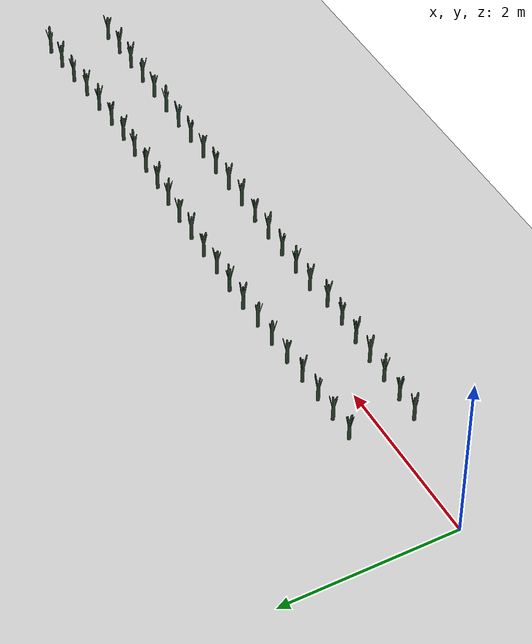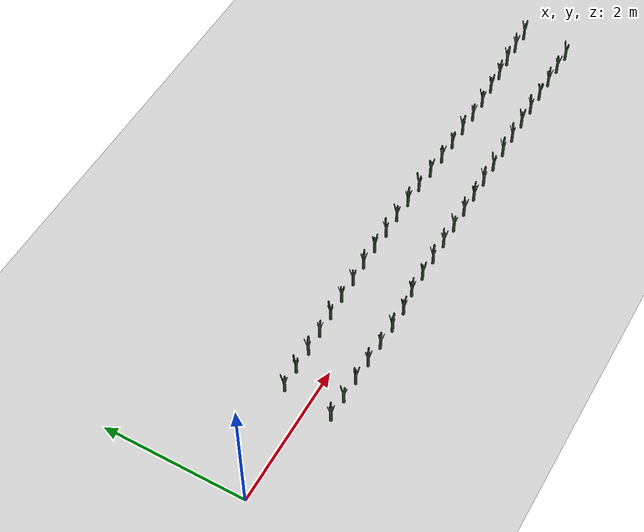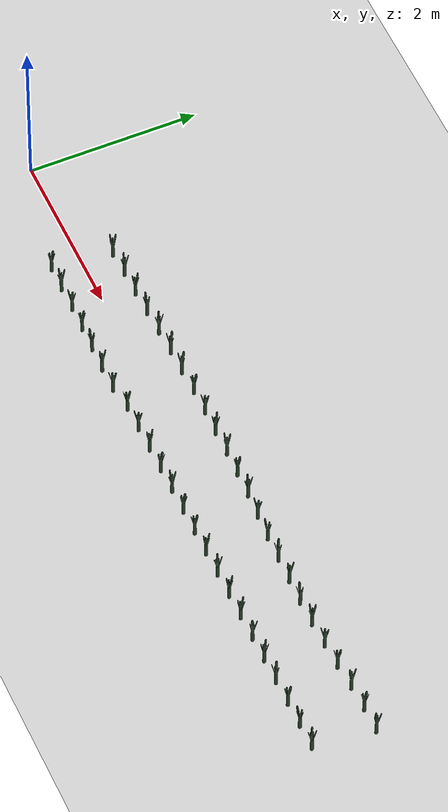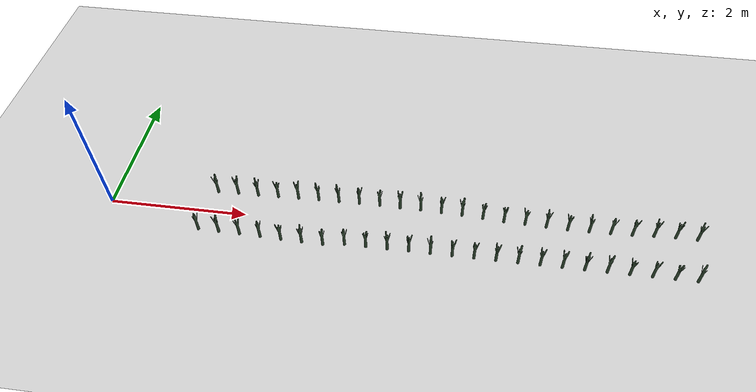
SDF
<sdf version="1.6">
 <world name="default">
  <light name="sun" type="directional">
   <pose>0 0 10 0 -0 0</pose>
   <diffuse>0.5 0.5 0.5 1</diffuse>
   <specular>0.1 0.1 0.1 1</specular>
   <attenuation>
    <range>1000</range>
    <constant>0.9</constant>
    <linear>0.01</linear>
    <quadratic>0.001</quadratic>
   </attenuation>
   <direction>0.9 0.5 -1</direction>
  </light>
  <scene><background>130 200 255 1</background><ambient>130 140 140 1</ambient></scene>
  <include><uri>model://dirt_plane</uri></include>
  <include><uri>model://Leek</uri><pose>1.500000 0.350000 0.15 0 0 83.530760</pose><static>0</static></include>
  <include><uri>model://Leek</uri><pose>1.800000 0.360000 0.15 0 0 -42.679906</pose><static>0</static></include>
  <include>
   <uri>model://Leek</uri>
   <pose>2.100000 0.360000 0.15 0 0 -112.647263</pose>
   <static>0</static>
  </include>
  <include><uri>model://Leek</uri><pose>2.400000 0.370000 0.15 0 0 22.061203</pose><static>0</static></include>
  <include><uri>model://Leek</uri><pose>2.700000 0.380000 0.15 0 0 120.552564</pose><static>0</static></include>
  <include>
   <uri>model://Leek</uri>
   <pose>3.000000 0.390000 0.15 0 0 -160.909843</pose>
   <static>0</static>
  </include>
  <include><uri>model://Leek</uri><pose>3.300000 0.390000 0.15 0 0 115.354255</pose><static>0</static></include>
  <include>
   <uri>model://Leek</uri>
   <pose>3.600000 0.400000 0.15 0 0 -152.092530</pose>
   <static>0</static>
  </include>
  <include><uri>model://Leek</uri><pose>3.900000 0.400000 0.15 0 0 48.374779</pose><static>0</static></include>
  <include><uri>model://Leek</uri><pose>4.200000 0.390000 0.15 0 0 -36.921878</pose><static>0</static></include>
  <include><uri>model://Leek</uri><pose>4.500000 0.390000 0.15 0 0 -79.912098</pose><static>0</static></include>
  <include>
   <uri>model://Leek</uri>
   <pose>4.800000 0.380000 0.15 0 0 -170.996642</pose>
   <static>0</static>
  </include>
  <include><uri>model://Leek</uri><pose>5.100000 0.370000 0.15 0 0 -42.717907</pose><static>0</static></include>
  <include>
   <uri>model://Leek</uri>
   <pose>5.400000 0.350000 0.15 0 0 -115.399049</pose>
   <static>0</static>
  </include>
  <include>
   <uri>model://Leek</uri>
   <pose>5.700000 0.330000 0.15 0 0 -153.473679</pose>
   <static>0</static>
  </include>
  <include><uri>model://Leek</uri><pose>6.000000 0.320000 0.15 0 0 53.032318</pose><static>0</static></include>
  <include>
   <uri>model://Leek</uri>
   <pose>6.300000 0.310000 0.15 0 0 -157.127290</pose>
   <static>0</static>
  </include>
  <include>
   <uri>model://Leek</uri>
   <pose>6.600000 0.300000 0.15 0 0 -166.635266</pose>
   <static>0</static>
  </include>
  <include>
   <uri>model://Leek</uri>
   <pose>6.900000 0.300000 0.15 0 0 -149.031655</pose>
   <static>0</static>
  </include>
  <include><uri>model://Leek</uri><pose>7.200000 0.310000 0.15 0 0 4.301634</pose><static>0</static></include>
  <include><uri>model://Leek</uri><pose>7.500000 0.320000 0.15 0 0 -51.845319</pose><static>0</static></include>
  <include><uri>model://Leek</uri><pose>7.800000 0.340000 0.15 0 0 150.802849</pose><static>0</static></include>
  <include><uri>model://Leek</uri><pose>8.100000 0.350000 0.15 0 0 -82.827101</pose><static>0</static></include>
  <include><uri>model://Leek</uri><pose>8.400000 0.350000 0.15 0 0 -63.120062</pose><static>0</static></include>
  <include>
   <uri>model://Leek</uri>
   <pose>1.414016 -0.350000 0.15 0 0 130.833984</pose>
   <static>0</static>
  </include>
  <include>
   <uri>model://Leek</uri>
   <pose>1.714016 -0.360000 0.15 0 0 -155.405604</pose>
   <static>0</static>
  </include>
  <include>
   <uri>model://Leek</uri>
   <pose>2.014016 -0.360000 0.15 0 0 -127.967385</pose>
   <static>0</static>
  </include>
  <include>
   <uri>model://Leek</uri>
   <pose>2.314016 -0.370000 0.15 0 0 -82.888001</pose>
   <static>0</static>
  </include>
  <include>
   <uri>model://Leek</uri>
   <pose>2.614016 -0.380000 0.15 0 0 116.438065</pose>
   <static>0</static>
  </include>
  <include><uri>model://Leek</uri><pose>2.914016 -0.390000 0.15 0 0 81.802038</pose><static>0</static></include>
  <include>
   <uri>model://Leek</uri>
   <pose>3.214016 -0.390000 0.15 0 0 -114.854261</pose>
   <static>0</static>
  </include>
  <include>
   <uri>model://Leek</uri>
   <pose>3.514016 -0.350000 0.15 0 0 -32.908311</pose>
   <static>0</static>
  </include>
  <include>
   <uri>model://Leek</uri>
   <pose>3.814016 -0.350000 0.15 0 0 -77.487732</pose>
   <static>0</static>
  </include>
  <include>
   <uri>model://Leek</uri>
   <pose>4.114016 -0.350000 0.15 0 0 100.865554</pose>
   <static>0</static>
  </include>
  <include>
   <uri>model://Leek</uri>
   <pose>4.414016 -0.350000 0.15 0 0 -89.004162</pose>
   <static>0</static>
  </include>
  <include>
   <uri>model://Leek</uri>
   <pose>4.714016 -0.350000 0.15 0 0 -105.199739</pose>
   <static>0</static>
  </include>
  <include>
   <uri>model://Leek</uri>
   <pose>5.014016 -0.350000 0.15 0 0 137.134652</pose>
   <static>0</static>
  </include>
  <include>
   <uri>model://Leek</uri>
   <pose>5.314016 -0.350000 0.15 0 0 124.267895</pose>
   <static>0</static>
  </include>
  <include>
   <uri>model://Leek</uri>
   <pose>5.614016 -0.350000 0.15 0 0 -144.224266</pose>
   <static>0</static>
  </include>
  <include>
   <uri>model://Leek</uri>
   <pose>5.914016 -0.350000 0.15 0 0 133.134095</pose>
   <static>0</static>
  </include>
  <include>
   <uri>model://Leek</uri>
   <pose>6.214016 -0.350000 0.15 0 0 -150.462763</pose>
   <static>0</static>
  </include>
  <include>
   <uri>model://Leek</uri>
   <pose>6.514016 -0.350000 0.15 0 0 157.630559</pose>
   <static>0</static>
  </include>
  <include>
   <uri>model://Leek</uri>
   <pose>6.814016 -0.350000 0.15 0 0 -107.243070</pose>
   <static>0</static>
  </include>
  <include>
   <uri>model://Leek</uri>
   <pose>7.114016 -0.350000 0.15 0 0 -11.783835</pose>
   <static>0</static>
  </include>
  <include>
   <uri>model://Leek</uri>
   <pose>7.414016 -0.350000 0.15 0 0 -22.474346</pose>
   <static>0</static>
  </include>
  <include>
   <uri>model://Leek</uri>
   <pose>7.714016 -0.350000 0.15 0 0 -70.535708</pose>
   <static>0</static>
  </include>
  <include>
   <uri>model://Leek</uri>
   <pose>8.014016 -0.350000 0.15 0 0 -78.168944</pose>
   <static>0</static>
  </include>
  <include>
   <uri>model://Leek</uri>
   <pose>8.314016 -0.350000 0.15 0 0 -93.157600</pose>
   <static>0</static>
  </include>
 </world>
</sdf>

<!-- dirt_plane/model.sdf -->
<sdf version="1.4">
<model name="dirt_plane">
  <static>true</static>
    <link name="link">
      <collision name="collision">
        <geometry>
          <plane>
            <normal>0 0 1</normal>
            <size>100 100</size>
          </plane>
        </geometry>
        <surface>
          <friction>
            <ode>
              <mu>100</mu>
              <mu2>50</mu2>
            </ode>
          </friction>
        </surface>
      </collision>
      <visual name="visual">
        <cast_shadows>false</cast_shadows>
        <geometry>
          <plane>
            <normal>0 0 1</normal>
            <size>100 100</size>
          </plane>
        </geometry>
        <material>
          <script>
            <uri>model://ground_plane/materials/scripts/my_ground_plane.material</uri>
            <uri>model://ground_plane/materials/textures</uri>
            <name>my_ground_plane/Dirt</name>
          </script>
        </material>
      </visual>
    </link>
  </model>
</sdf>

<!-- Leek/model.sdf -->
<sdf version='1.6'>
  <model name='Leek'>
    <link name='link'>
      <pose frame=''>0 0 0 0 -0 0</pose>
      <inertial>
        <mass>1</mass>
        <inertia>
          <ixx>0.145833</ixx>
          <ixy>0</ixy>
          <ixz>0</ixz>
          <iyy>0.145833</iyy>
          <iyz>0</iyz>
          <izz>0.125</izz>
        </inertia>
        <pose frame=''>0 0 0 0 -0 0</pose>
      </inertial>
      <self_collide>0</self_collide>
      <kinematic>0</kinematic>
      <gravity>1</gravity>
      <visual name='visual'>
        <geometry>
          <mesh>
            <uri>model://Leek/Poireau.dae</uri>
            <scale>1 1 1</scale>
          </mesh>
        </geometry>
        <material>
          <script>
            <name>Gazebo/Grey</name>
            <uri>file://media/materials/scripts/gazebo.material</uri>
          </script>
          <ambient>0.3 0.7 0.4 0</ambient>
          <diffuse>0.2 0.3 0.2 0</diffuse>
          <specular>0 0 0 1</specular>
          <emissive>0 0 0 1</emissive>
          <shader type='vertex'>
            <normal_map>__default__</normal_map>
          </shader>
        </material>
        <pose frame=''>0 0 -0.08 0 -0 0</pose>
        <cast_shadows>1</cast_shadows>
        <transparency>0</transparency>
      </visual>
      <collision name='collision'>
        <laser_retro>0</laser_retro>
        <max_contacts>10</max_contacts>
        <pose frame=''>0 0 0 0 -0 0</pose>
        <geometry>
          <cylinder>
            <radius>0.02</radius>
            <length>0.25</length>
          </cylinder>
        </geometry>
        <surface>
          <friction>
            <ode>
              <mu>1</mu>
              <mu2>1</mu2>
              <fdir1>0 0 0</fdir1>
              <slip1>0</slip1>
              <slip2>0</slip2>
            </ode>
            <torsional>
              <coefficient>1</coefficient>
              <patch_radius>0</patch_radius>
              <surface_radius>0</surface_radius>
              <use_patch_radius>1</use_patch_radius>
              <ode>
                <slip>0</slip>
              </ode>
            </torsional>
          </friction>
          <bounce>
            <restitution_coefficient>0</restitution_coefficient>
            <threshold>1e+06</threshold>
          </bounce>
          <contact>
            <collide_without_contact>0</collide_without_contact>
            <collide_without_contact_bitmask>1</collide_without_contact_bitmask>
            <collide_bitmask>1</collide_bitmask>
            <ode>
              <soft_cfm>0</soft_cfm>
              <soft_erp>0.2</soft_erp>
              <kp>1e+13</kp>
              <kd>1</kd>
              <max_vel>0.01</max_vel>
              <min_depth>0</min_depth>
            </ode>
            <bullet>
              <split_impulse>1</split_impulse>
              <split_impulse_penetration_threshold>-0.01</split_impulse_penetration_threshold>
              <soft_cfm>0</soft_cfm>
              <soft_erp>0.2</soft_erp>
              <kp>1e+13</kp>
              <kd>1</kd>
            </bullet>
          </contact>
        </surface>
      </collision>
    </link>
    <static>0</static>
    <allow_auto_disable>1</allow_auto_disable>
  </model>
</sdf>
